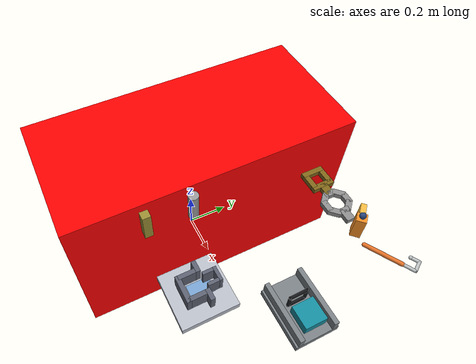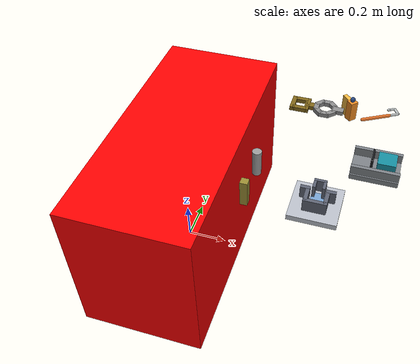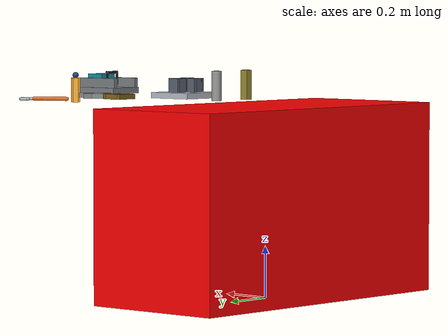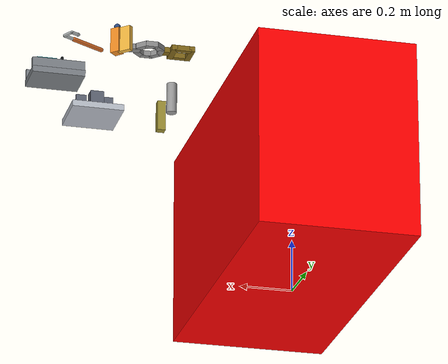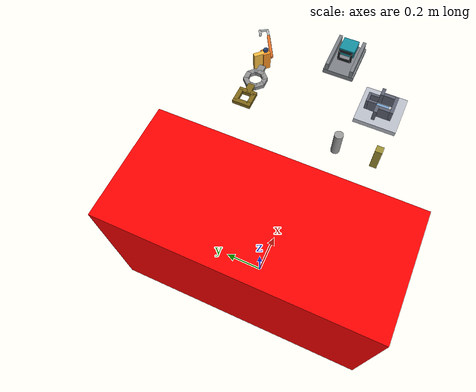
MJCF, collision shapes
<?xml version='1.0' encoding='utf-8'?>
<mujoco model="nut_and_bolt_task">
  <compiler angle="radian" meshdir="../assets" texturedir="../assets" />
  <default>
    <default class="yam">
      <position inheritrange="1" />
      <joint frictionloss="0.1" axis="0 0 1" />
      <default class="dm4340"><joint armature="0.032" /><position kp="40" kv="2.5" forcerange="-28 28" /></default>
      <default class="dm4310"><joint armature="0.0018" /><position kp="10" kv="1" forcerange="-10 10" /></default>
      <default class="visual"><geom type="mesh" contype="0" conaffinity="0" density="0" group="2" material="black" /></default>
      <default class="collision">
        <geom group="3" type="capsule" friction="2.0 0.1 0.01" condim="4" />
        <default class="sphere_collision">
          <geom size="0.0006 0 0" type="sphere" rgba="1 0 0 1" friction="4.0 0.1 0.01" condim="4" solimp="0.998 0.998 0.001" solref="0.004 1" priority="2" />
        </default>
      </default>
      <default class="finger"><joint type="slide" armature="0.1" frictionloss="0.1" /><position ctrlrange="0.0 0.0495" kp="400" kv="14" inheritrange="0" /></default>
    </default>
    <default class="CMC_joint"><joint armature="0.0032" damping="4.20E-05" frictionloss="0.132" /></default>
    <default class="PCMC_joint"><joint armature="0.00012" damping="4.20E-05" frictionloss="0.012" /></default>
    <default class="MCP_joint"><joint armature="0.00265" damping="2.38E-05" frictionloss="0.07456" /></default>
    <default class="PIP_joint"><joint armature="0.0006" damping="4.06E-06" frictionloss="0.01276" /></default>
    <default class="DIP_joint"><joint armature="0.00042" damping="1.21E-06" frictionloss="0.00378738" /></default>
    <default class="elastomer_geom"><geom solref="0.004 1" friction="3.0 0.1 0.01" priority="2" condim="4" /></default>
    <default class="hand_bone"><geom friction="1.8 0.03 0.003" priority="2" condim="4" /></default>
  </default>
  <contact>
    <exclude body1="right_hand_C_MC" body2="right_thumb_CMC_VL" />
    <exclude body1="right_hand_C_MC" body2="right_hand_C_MC" />
    <exclude body1="right_hand_C_MC" body2="right_thumb_MC" />
    <exclude body1="right_thumb_MC" body2="right_thumb_MCP_VL" />
    <exclude body1="right_thumb_MC" body2="right_thumb_PP" />
    <exclude body1="right_thumb_MCP_VL" body2="right_thumb_PP" />
    <exclude body1="right_thumb_PP" body2="right_thumb_DP" />
    <exclude body1="right_hand_C_MC" body2="right_index_MCP_VL" />
    <exclude body1="right_hand_C_MC" body2="right_index_PP" />
    <exclude body1="right_index_MCP_VL" body2="right_index_PP" />
    <exclude body1="right_index_PP" body2="right_index_MP" />
    <exclude body1="right_index_MP" body2="right_index_DP" />
    <exclude body1="right_hand_C_MC" body2="right_middle_MCP_VL" />
    <exclude body1="right_hand_C_MC" body2="right_middle_PP" />
    <exclude body1="right_middle_MCP_VL" body2="right_middle_PP" />
    <exclude body1="right_middle_PP" body2="right_middle_MP" />
    <exclude body1="right_middle_MP" body2="right_middle_DP" />
    <exclude body1="right_hand_C_MC" body2="right_ring_MCP_VL" />
    <exclude body1="right_hand_C_MC" body2="right_ring_PP" />
    <exclude body1="right_ring_MCP_VL" body2="right_ring_PP" />
    <exclude body1="right_ring_PP" body2="right_ring_MP" />
    <exclude body1="right_ring_MP" body2="right_ring_DP" />
    <exclude body1="right_hand_C_MC" body2="right_pinky_MC" />
    <exclude body1="right_pinky_MC" body2="right_pinky_MCP_VL" />
    <exclude body1="right_pinky_MC" body2="right_pinky_PP" />
    <exclude body1="right_pinky_MCP_VL" body2="right_pinky_PP" />
    <exclude body1="right_pinky_PP" body2="right_pinky_MP" />
    <exclude body1="right_pinky_MP" body2="right_pinky_DP" />
    <exclude body1="left_hand_C_MC" body2="left_thumb_CMC_VL" />
    <exclude body1="left_hand_C_MC" body2="left_hand_C_MC" />
    <exclude body1="left_hand_C_MC" body2="left_thumb_MC" />
    <exclude body1="left_thumb_MC" body2="left_thumb_MCP_VL" />
    <exclude body1="left_thumb_MC" body2="left_thumb_PP" />
    <exclude body1="left_thumb_MCP_VL" body2="left_thumb_PP" />
    <exclude body1="left_thumb_PP" body2="left_thumb_DP" />
    <exclude body1="left_hand_C_MC" body2="left_index_MCP_VL" />
    <exclude body1="left_hand_C_MC" body2="left_index_PP" />
    <exclude body1="left_index_MCP_VL" body2="left_index_PP" />
    <exclude body1="left_index_PP" body2="left_index_MP" />
    <exclude body1="left_index_MP" body2="left_index_DP" />
    <exclude body1="left_hand_C_MC" body2="left_middle_MCP_VL" />
    <exclude body1="left_hand_C_MC" body2="left_middle_PP" />
    <exclude body1="left_middle_MCP_VL" body2="left_middle_PP" />
    <exclude body1="left_middle_PP" body2="left_middle_MP" />
    <exclude body1="left_middle_MP" body2="left_middle_DP" />
    <exclude body1="left_hand_C_MC" body2="left_ring_MCP_VL" />
    <exclude body1="left_hand_C_MC" body2="left_ring_PP" />
    <exclude body1="left_ring_MCP_VL" body2="left_ring_PP" />
    <exclude body1="left_ring_PP" body2="left_ring_MP" />
    <exclude body1="left_ring_MP" body2="left_ring_DP" />
    <exclude body1="left_hand_C_MC" body2="left_pinky_MC" />
    <exclude body1="left_pinky_MC" body2="left_pinky_MCP_VL" />
    <exclude body1="left_pinky_MC" body2="left_pinky_PP" />
    <exclude body1="left_pinky_MCP_VL" body2="left_pinky_PP" />
    <exclude body1="left_pinky_PP" body2="left_pinky_MP" />
    <exclude body1="left_pinky_MP" body2="left_pinky_DP" />
  </contact>
  <asset>
    <texture type="cube" name="brass-tex" file="textures/brass-ambra.png" />
    <material name="brass" texture="brass-tex" texuniform="true" specular="1" shininess="1" reflectance="1" />
    <texture type="cube" name="steel-tex" file="textures/steel-scratched.png" />
    <material name="steel" texture="steel-tex" texuniform="true" specular="1" shininess="1" reflectance="1" />
    <material name="rail_gray" rgba="0.48 0.50 0.52 1" />
    <material name="slider_teal" rgba="0.08 0.55 0.62 1" />
    <material name="ring_black" rgba="0.08 0.09 0.10 1" />
    <material name="hook_steel" rgba="0.74 0.76 0.76 1" />
    <material name="hook_grip" rgba="0.90 0.45 0.16 1" />
    <texture type="skybox" builtin="gradient" rgb1="1.0 1.0 1.0" rgb2="0.98 0.98 0.98" width="512" height="3072" />
  </asset>
  <worldbody>
    <body name="nut_peg_square" pos="0.42 -0.36 0.81">
      <geom name="nut_peg_square_col" size="0.016 0.016 0.06" type="box" group="3" friction="1.2 0.01 0.001" condim="4" solimp="0.998 0.998 0.001" solref="0.002 1" priority="1" rgba="0.6 0.55 0.2 1" />
      <geom name="nut_peg_square_vis" size="0.016 0.016 0.06" type="box" contype="0" conaffinity="0" group="1" material="brass" mass="0" />
    </body>
    <body name="nut_peg_round" pos="0.42 -0.18 0.81">
      <geom name="nut_peg_round_col" size="0.02 0.06" type="cylinder" group="3" friction="1.2 0.01 0.001" condim="4" solimp="0.998 0.998 0.001" solref="0.002 1" priority="1" rgba="0.6 0.6 0.6 1" />
      <geom name="nut_peg_round_vis" size="0.02 0.06" type="cylinder" contype="0" conaffinity="0" group="1" material="steel" mass="0" />
    </body>
    <body name="keyed_peg_board" pos="0.70 -0.30 0.762">
      <geom name="peg_board_base_visual" type="box" size="0.10 0.10 0.012" pos="0 0 0" rgba="0.72 0.74 0.78 1" group="2" contype="0" conaffinity="0" density="0" />
      <geom name="peg_board_base" type="box" size="0.10 0.10 0.012" pos="0 0 0" rgba="0.72 0.74 0.78 1" group="3" condim="4" friction="1.2 0.01 0.001" solref="0.002 1" solimp="0.998 0.998 0.001" priority="1" />
      <geom name="slot_floor_marker" type="box" size="0.027 0.040 0.001" pos="0 0.010 0.0135" rgba="0.20 0.55 0.90 0.45" group="2" contype="0" conaffinity="0" />
      <geom name="slot_x_neg_wall_visual" type="box" size="0.008 0.030 0.028" pos="-0.040 -0.020 0.041" rgba="0.36 0.38 0.44 1" group="2" contype="0" conaffinity="0" density="0" />
      <geom name="slot_x_neg_wall" type="box" size="0.008 0.030 0.028" pos="-0.040 -0.020 0.041" rgba="0.36 0.38 0.44 1" group="3" condim="4" friction="1.2 0.01 0.001" solref="0.002 1" solimp="0.998 0.998 0.001" priority="1" />
      <geom name="slot_x_pos_wall_visual" type="box" size="0.008 0.030 0.028" pos="0.040 -0.020 0.041" rgba="0.36 0.38 0.44 1" group="2" contype="0" conaffinity="0" density="0" />
      <geom name="slot_x_pos_wall" type="box" size="0.008 0.030 0.028" pos="0.040 -0.020 0.041" rgba="0.36 0.38 0.44 1" group="3" condim="4" friction="1.2 0.01 0.001" solref="0.002 1" solimp="0.998 0.998 0.001" priority="1" />
      <geom name="slot_y_neg_wall_visual" type="box" size="0.048 0.008 0.028" pos="0 -0.050 0.041" rgba="0.36 0.38 0.44 1" group="2" contype="0" conaffinity="0" density="0" />
      <geom name="slot_y_neg_wall" type="box" size="0.048 0.008 0.028" pos="0 -0.050 0.041" rgba="0.36 0.38 0.44 1" group="3" condim="4" friction="1.2 0.01 0.001" solref="0.002 1" solimp="0.998 0.998 0.001" priority="1" />
      <geom name="slot_y_pos_left_block_visual" type="box" size="0.020 0.008 0.028" pos="-0.052 0.018 0.041" rgba="0.36 0.38 0.44 1" group="2" contype="0" conaffinity="0" density="0" />
      <geom name="slot_y_pos_left_block" type="box" size="0.020 0.008 0.028" pos="-0.052 0.018 0.041" rgba="0.36 0.38 0.44 1" group="3" condim="4" friction="1.2 0.01 0.001" solref="0.002 1" solimp="0.998 0.998 0.001" priority="1" />
      <geom name="slot_y_pos_right_block_visual" type="box" size="0.020 0.008 0.028" pos="0.052 0.018 0.041" rgba="0.36 0.38 0.44 1" group="2" contype="0" conaffinity="0" density="0" />
      <geom name="slot_y_pos_right_block" type="box" size="0.020 0.008 0.028" pos="0.052 0.018 0.041" rgba="0.36 0.38 0.44 1" group="3" condim="4" friction="1.2 0.01 0.001" solref="0.002 1" solimp="0.998 0.998 0.001" priority="1" />
      <geom name="slot_notch_left_wall_visual" type="box" size="0.006 0.020 0.028" pos="-0.020 0.046 0.041" rgba="0.36 0.38 0.44 1" group="2" contype="0" conaffinity="0" density="0" />
      <geom name="slot_notch_left_wall" type="box" size="0.006 0.020 0.028" pos="-0.020 0.046 0.041" rgba="0.36 0.38 0.44 1" group="3" condim="4" friction="1.2 0.01 0.001" solref="0.002 1" solimp="0.998 0.998 0.001" priority="1" />
      <geom name="slot_notch_right_wall_visual" type="box" size="0.006 0.020 0.028" pos="0.020 0.046 0.041" rgba="0.36 0.38 0.44 1" group="2" contype="0" conaffinity="0" density="0" />
      <geom name="slot_notch_right_wall" type="box" size="0.006 0.020 0.028" pos="0.020 0.046 0.041" rgba="0.36 0.38 0.44 1" group="3" condim="4" friction="1.2 0.01 0.001" solref="0.002 1" solimp="0.998 0.998 0.001" priority="1" />
      <geom name="slot_notch_end_wall_visual" type="box" size="0.026 0.006 0.028" pos="0 0.070 0.041" rgba="0.36 0.38 0.44 1" group="2" contype="0" conaffinity="0" density="0" />
      <geom name="slot_notch_end_wall" type="box" size="0.026 0.006 0.028" pos="0 0.070 0.041" rgba="0.36 0.38 0.44 1" group="3" condim="4" friction="1.2 0.01 0.001" solref="0.002 1" solimp="0.998 0.998 0.001" priority="1" />
    </body>
    <body name="hook_pull_fixture" pos="0.90 -0.05 0.785">
      <geom name="pull_track_base_visual" type="box" size="0.10 0.075 0.012" pos="0 0 0" material="rail_gray" group="2" contype="0" conaffinity="0" density="0" />
      <geom name="pull_track_base" type="box" size="0.10 0.075 0.012" pos="0 0 0" material="rail_gray" group="3" condim="4" friction="1.2 0.01 0.001" solref="0.002 1" solimp="0.998 0.998 0.001" priority="1" />
      <geom name="pull_track_left_rail_visual" type="box" size="0.10 0.008 0.020" pos="0 0.060 0.030" material="rail_gray" group="2" contype="0" conaffinity="0" density="0" />
      <geom name="pull_track_left_rail" type="box" size="0.10 0.008 0.020" pos="0 0.060 0.030" material="rail_gray" group="3" condim="4" friction="1.2 0.01 0.001" solref="0.002 1" solimp="0.998 0.998 0.001" priority="1" />
      <geom name="pull_track_right_rail_visual" type="box" size="0.10 0.008 0.020" pos="0 -0.060 0.030" material="rail_gray" group="2" contype="0" conaffinity="0" density="0" />
      <geom name="pull_track_right_rail" type="box" size="0.10 0.008 0.020" pos="0 -0.060 0.030" material="rail_gray" group="3" condim="4" friction="1.2 0.01 0.001" solref="0.002 1" solimp="0.998 0.998 0.001" priority="1" />
      <body name="pull_slider" pos="0.040 0 0.048">
        <joint name="pull_slider_joint" type="slide" axis="-1 0 0" range="0 0.115" damping="5.0" frictionloss="0.04" />
        <geom name="pull_slider_block_visual" type="box" size="0.038 0.038 0.018" pos="0 0 0" material="slider_teal" group="2" contype="0" conaffinity="0" density="0" />
        <geom name="pull_slider_block" type="box" size="0.038 0.038 0.018" pos="0 0 0" material="slider_teal" group="3" mass="0.060" condim="4" friction="1.2 0.01 0.001" solref="0.002 1" solimp="0.998 0.998 0.001" priority="1" />
        <geom name="pull_ring_top_visual" type="capsule" size="0.0055" fromto="-0.060 -0.030 0.025 -0.060 0.030 0.025" material="ring_black" group="2" contype="0" conaffinity="0" density="0" />
        <geom name="pull_ring_top" type="capsule" fromto="-0.060 -0.030 0.025 -0.060 0.030 0.025" size="0.0055" material="ring_black" group="3" mass="0.004" condim="4" friction="1.2 0.01 0.001" solref="0.002 1" solimp="0.998 0.998 0.001" priority="1" />
        <geom name="pull_ring_bottom_visual" type="capsule" size="0.0055" fromto="-0.060 -0.030 -0.025 -0.060 0.030 -0.025" material="ring_black" group="2" contype="0" conaffinity="0" density="0" />
        <geom name="pull_ring_bottom" type="capsule" fromto="-0.060 -0.030 -0.025 -0.060 0.030 -0.025" size="0.0055" material="ring_black" group="3" mass="0.004" condim="4" friction="1.2 0.01 0.001" solref="0.002 1" solimp="0.998 0.998 0.001" priority="1" />
        <geom name="pull_ring_left_visual" type="capsule" size="0.0055" fromto="-0.060 -0.030 -0.025 -0.060 -0.030 0.025" material="ring_black" group="2" contype="0" conaffinity="0" density="0" />
        <geom name="pull_ring_left" type="capsule" fromto="-0.060 -0.030 -0.025 -0.060 -0.030 0.025" size="0.0055" material="ring_black" group="3" mass="0.004" condim="4" friction="1.2 0.01 0.001" solref="0.002 1" solimp="0.998 0.998 0.001" priority="1" />
        <geom name="pull_ring_right_visual" type="capsule" size="0.0055" fromto="-0.060 0.030 -0.025 -0.060 0.030 0.025" material="ring_black" group="2" contype="0" conaffinity="0" density="0" />
        <geom name="pull_ring_right" type="capsule" fromto="-0.060 0.030 -0.025 -0.060 0.030 0.025" size="0.0055" material="ring_black" group="3" mass="0.004" condim="4" friction="1.2 0.01 0.001" solref="0.002 1" solimp="0.998 0.998 0.001" priority="1" />
      </body>
    </body>
    <body name="square_nut" pos="0.50 0.30 0.78">
      <freejoint name="square_nut_joint" />
      <geom name="square_nut_g0" size="0.0105 0.04375 0.01" pos="-0.03325 0 0" type="box" condim="4" friction="1.2 0.01 0.001" solimp="0.998 0.998 0.001" solref="0.002 1" priority="1" density="500" rgba="0.5 0.4 0.1 1" group="3" />
      <geom name="square_nut_g1" size="0.03125 0.0105 0.01" pos="0 0.03325 0" type="box" condim="4" friction="1.2 0.01 0.001" solimp="0.998 0.998 0.001" solref="0.002 1" priority="1" density="500" rgba="0.5 0.4 0.1 1" group="3" />
      <geom name="square_nut_g2" size="0.03125 0.0105 0.01" pos="0 -0.03325 0" type="box" condim="4" friction="1.2 0.01 0.001" solimp="0.998 0.998 0.001" solref="0.002 1" priority="1" density="500" rgba="0.5 0.4 0.1 1" group="3" />
      <geom name="square_nut_g3" size="0.0105 0.04375 0.01" pos="0.03325 0 0" type="box" condim="4" friction="1.2 0.01 0.001" solimp="0.998 0.998 0.001" solref="0.002 1" priority="1" density="500" rgba="0.5 0.4 0.1 1" group="3" />
      <geom name="square_nut_g4" size="0.02525 0.015875 0.01" pos="0.054 0 0" type="box" condim="4" friction="1.2 0.01 0.001" solimp="0.998 0.998 0.001" solref="0.002 1" priority="1" density="500" rgba="0.5 0.4 0.1 1" group="3" />
      <geom name="square_nut_g0_vis" size="0.0105 0.04375 0.01" pos="-0.03325 0 0" type="box" contype="0" conaffinity="0" group="1" material="brass" mass="0" />
      <geom name="square_nut_g1_vis" size="0.03125 0.0105 0.01" pos="0 0.03325 0" type="box" contype="0" conaffinity="0" group="1" material="brass" mass="0" />
      <geom name="square_nut_g2_vis" size="0.03125 0.0105 0.01" pos="0 -0.03325 0" type="box" contype="0" conaffinity="0" group="1" material="brass" mass="0" />
      <geom name="square_nut_g3_vis" size="0.0105 0.04375 0.01" pos="0.03325 0 0" type="box" contype="0" conaffinity="0" group="1" material="brass" mass="0" />
      <geom name="square_nut_g4_vis" size="0.02525 0.015875 0.01" pos="0.054 0 0" type="box" contype="0" conaffinity="0" group="1" material="brass" mass="0" />
    </body>
    <body name="round_nut" pos="0.62 0.30 0.78">
      <freejoint name="round_nut_joint" />
      <geom name="round_nut_g0" size="0.01125 0.0225 0.01" pos="-0.04245 0 0" type="box" condim="4" friction="1.2 0.01 0.001" solimp="0.998 0.998 0.001" solref="0.002 1" priority="1" density="500" rgba="0.55 0.55 0.55 1" group="3" />
      <geom name="round_nut_g1" size="0.01125 0.0225 0.01" pos="0.04245 0 0" type="box" condim="4" friction="1.2 0.01 0.001" solimp="0.998 0.998 0.001" solref="0.002 1" priority="1" density="500" rgba="0.55 0.55 0.55 1" group="3" />
      <geom name="round_nut_g2" size="0.0225 0.01125 0.01" pos="0 -0.04245 0" type="box" condim="4" friction="1.2 0.01 0.001" solimp="0.998 0.998 0.001" solref="0.002 1" priority="1" density="500" rgba="0.55 0.55 0.55 1" group="3" />
      <geom name="round_nut_g3" size="0.0225 0.01125 0.01" pos="0 0.04245 0" type="box" condim="4" friction="1.2 0.01 0.001" solimp="0.998 0.998 0.001" solref="0.002 1" priority="1" density="500" rgba="0.55 0.55 0.55 1" group="3" />
      <geom name="round_nut_g4" size="0.01125 0.0225 0.01" pos="-0.03 -0.03 0" quat="0.92388 0 0 0.382683" type="box" condim="4" friction="1.2 0.01 0.001" solimp="0.998 0.998 0.001" solref="0.002 1" priority="1" density="500" rgba="0.55 0.55 0.55 1" group="3" />
      <geom name="round_nut_g5" size="0.01125 0.0225 0.01" pos="0.03 0.03 0" quat="0.92388 0 0 0.382683" type="box" condim="4" friction="1.2 0.01 0.001" solimp="0.998 0.998 0.001" solref="0.002 1" priority="1" density="500" rgba="0.55 0.55 0.55 1" group="3" />
      <geom name="round_nut_g6" size="0.0225 0.01125 0.01" pos="0.03 -0.03 0" quat="0.92388 0 0 0.382683" type="box" condim="4" friction="1.2 0.01 0.001" solimp="0.998 0.998 0.001" solref="0.002 1" priority="1" density="500" rgba="0.55 0.55 0.55 1" group="3" />
      <geom name="round_nut_g7" size="0.0225 0.01125 0.01" pos="-0.03 0.03 0" quat="0.92388 0 0 0.382683" type="box" condim="4" friction="1.2 0.01 0.001" solimp="0.998 0.998 0.001" solref="0.002 1" priority="1" density="500" rgba="0.55 0.55 0.55 1" group="3" />
      <geom name="round_nut_g8" size="0.02525 0.015875 0.01" pos="0.06 0 0" type="box" condim="4" friction="1.2 0.01 0.001" solimp="0.998 0.998 0.001" solref="0.002 1" priority="1" density="500" rgba="0.55 0.55 0.55 1" group="3" />
      <geom name="round_nut_g0_vis" size="0.01125 0.0225 0.01" pos="-0.04245 0 0" type="box" contype="0" conaffinity="0" group="1" material="steel" mass="0" />
      <geom name="round_nut_g1_vis" size="0.01125 0.0225 0.01" pos="0.04245 0 0" type="box" contype="0" conaffinity="0" group="1" material="steel" mass="0" />
      <geom name="round_nut_g2_vis" size="0.0225 0.01125 0.01" pos="0 -0.04245 0" type="box" contype="0" conaffinity="0" group="1" material="steel" mass="0" />
      <geom name="round_nut_g3_vis" size="0.0225 0.01125 0.01" pos="0 0.04245 0" type="box" contype="0" conaffinity="0" group="1" material="steel" mass="0" />
      <geom name="round_nut_g4_vis" size="0.01125 0.0225 0.01" pos="-0.03 -0.03 0" quat="0.92388 0 0 0.382683" type="box" contype="0" conaffinity="0" group="1" material="steel" mass="0" />
      <geom name="round_nut_g5_vis" size="0.01125 0.0225 0.01" pos="0.03 0.03 0" quat="0.92388 0 0 0.382683" type="box" contype="0" conaffinity="0" group="1" material="steel" mass="0" />
      <geom name="round_nut_g6_vis" size="0.0225 0.01125 0.01" pos="0.03 -0.03 0" quat="0.92388 0 0 0.382683" type="box" contype="0" conaffinity="0" group="1" material="steel" mass="0" />
      <geom name="round_nut_g7_vis" size="0.0225 0.01125 0.01" pos="-0.03 0.03 0" quat="0.92388 0 0 0.382683" type="box" contype="0" conaffinity="0" group="1" material="steel" mass="0" />
      <geom name="round_nut_g8_vis" size="0.02525 0.015875 0.01" pos="0.06 0 0" type="box" contype="0" conaffinity="0" group="1" material="steel" mass="0" />
    </body>
    <body name="keyed_peg" pos="0.74 0.30 0.800" quat="0.92388 0 0 0.382683">
      <freejoint name="keyed_peg_joint" />
      <geom name="keyed_peg_stem_visual" type="box" size="0.018 0.018 0.048" pos="0 0 0" rgba="0.94 0.55 0.14 1" group="2" contype="0" conaffinity="0" density="0" />
      <geom name="keyed_peg_stem" type="box" size="0.018 0.018 0.048" pos="0 0 0" rgba="0.94 0.55 0.14 1" group="3" mass="0.035" condim="4" friction="1.2 0.01 0.001" solref="0.002 1" solimp="0.998 0.998 0.001" priority="1" />
      <geom name="keyed_peg_tab_visual" type="box" size="0.010 0.026 0.048" pos="0 0.034 0" rgba="0.95 0.72 0.25 1" group="2" contype="0" conaffinity="0" density="0" />
      <geom name="keyed_peg_tab" type="box" size="0.010 0.026 0.048" pos="0 0.034 0" rgba="0.95 0.72 0.25 1" group="3" mass="0.012" condim="4" friction="1.2 0.01 0.001" solref="0.002 1" solimp="0.998 0.998 0.001" priority="1" />
      <geom name="keyed_peg_top_button_visual" type="sphere" size="0.012" pos="0 0 0.058" rgba="0.16 0.28 0.50 1" group="2" contype="0" conaffinity="0" density="0" />
      <geom name="keyed_peg_top_button" type="sphere" size="0.012" pos="0 0 0.058" rgba="0.16 0.28 0.50 1" group="3" mass="0.003" condim="4" friction="1.2 0.01 0.001" solref="0.002 1" solimp="0.998 0.998 0.001" priority="1" />
    </body>
    <body name="hook_tool" pos="0.88 0.34 0.762" quat="0.965926 0 0 0.258819">
      <freejoint name="hook_tool_joint" />
      <geom name="hook_handle_visual" type="capsule" size="0.008" fromto="-0.095 0 0 0.040 0 0" material="hook_grip" group="2" contype="0" conaffinity="0" density="0" />
      <geom name="hook_handle" type="capsule" fromto="-0.095 0 0 0.040 0 0" size="0.008" material="hook_grip" group="3" mass="0.030" condim="4" friction="1.2 0.01 0.001" solref="0.002 1" solimp="0.998 0.998 0.001" priority="1" />
      <geom name="hook_shank_visual" type="capsule" size="0.006" fromto="0.035 0 0 0.085 0 0" material="hook_steel" group="2" contype="0" conaffinity="0" density="0" />
      <geom name="hook_shank" type="capsule" fromto="0.035 0 0 0.085 0 0" size="0.006" material="hook_steel" group="3" mass="0.012" condim="4" friction="1.2 0.01 0.001" solref="0.002 1" solimp="0.998 0.998 0.001" priority="1" />
      <geom name="hook_bend_visual" type="capsule" size="0.006" fromto="0.085 0 0 0.085 0.040 0" material="hook_steel" group="2" contype="0" conaffinity="0" density="0" />
      <geom name="hook_bend" type="capsule" fromto="0.085 0 0 0.085 0.040 0" size="0.006" material="hook_steel" group="3" mass="0.010" condim="4" friction="1.2 0.01 0.001" solref="0.002 1" solimp="0.998 0.998 0.001" priority="1" />
      <geom name="hook_tip_visual" type="capsule" size="0.006" fromto="0.085 0.040 0 0.055 0.040 0" material="hook_steel" group="2" contype="0" conaffinity="0" density="0" />
      <geom name="hook_tip" type="capsule" fromto="0.085 0.040 0 0.055 0.040 0" size="0.006" material="hook_steel" group="3" mass="0.008" condim="4" friction="1.2 0.01 0.001" solref="0.002 1" solimp="0.998 0.998 0.001" priority="1" />
      <geom name="hook_tip_ball_visual" type="sphere" size="0.007" pos="0.055 0.040 0" material="hook_steel" group="2" contype="0" conaffinity="0" density="0" />
      <geom name="hook_tip_ball" type="sphere" pos="0.055 0.040 0" size="0.007" material="hook_steel" group="3" mass="0.003" condim="4" friction="1.2 0.01 0.001" solref="0.002 1" solimp="0.998 0.998 0.001" priority="1" />
    </body>
    <geom type="mesh" contype="0" conaffinity="0" group="2" density="0" rgba="0.60 0.62 0.68 1" mesh="base_visual_gate" />
    <geom size="0.2975 0.65 0.375" pos="0 0 0.375" type="box" group="3" rgba="1 0 0 0.0" />
  </worldbody>
</mujoco>
